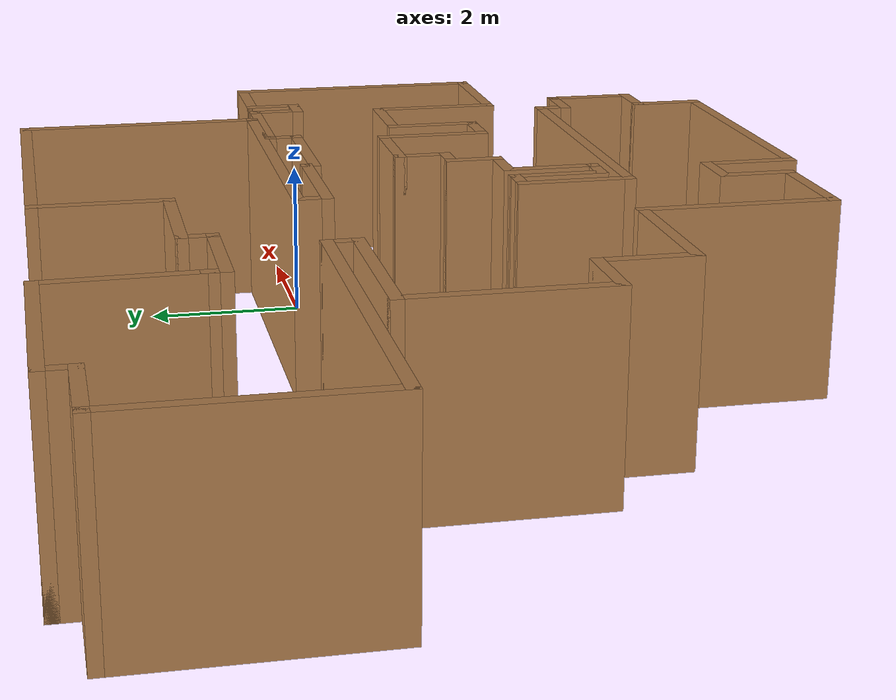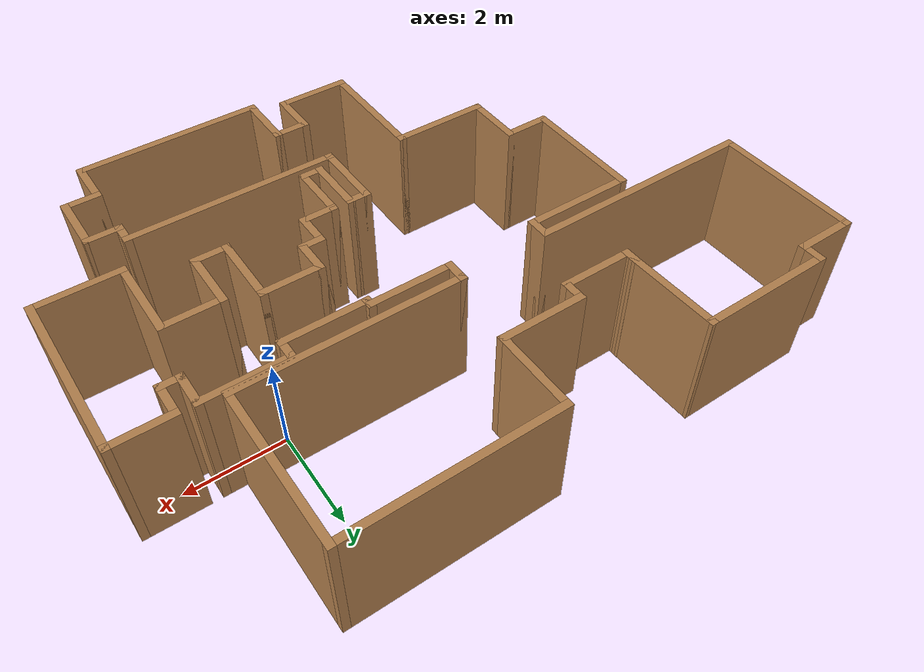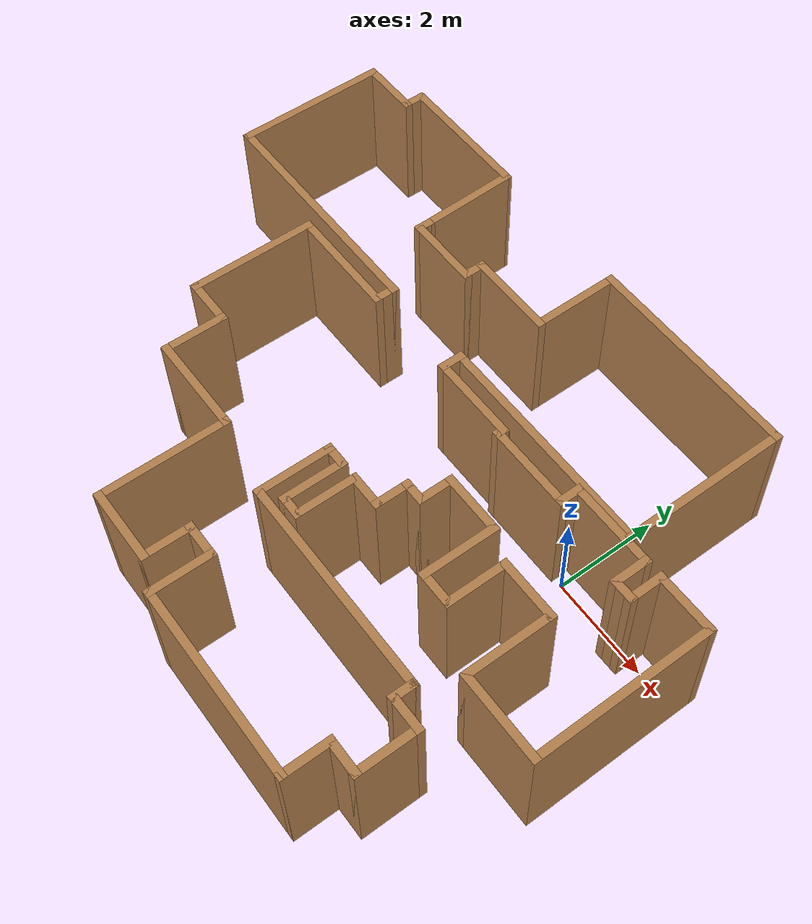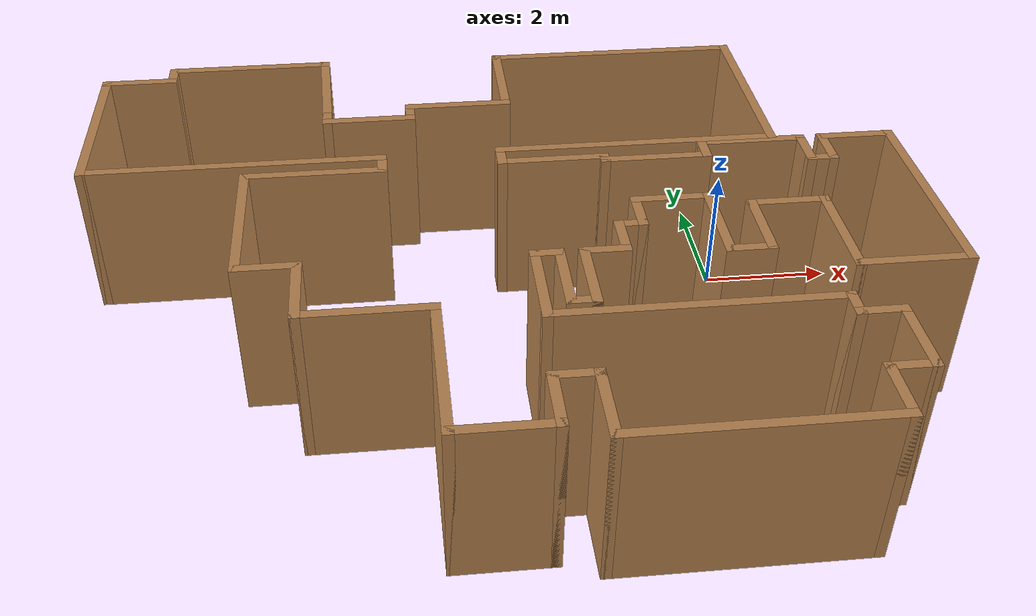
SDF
<?xml version='1.0'?>
<sdf version='1.6'>
  <model name='map_61'>
    <pose frame=''>-3.54305 -1.19375 0 0 -0 0</pose>
    <link name='Wall_0'>
      <collision name='Wall_0_Collision'>
        <geometry>
          <box>
            <size>2.75 0.15 2.5</size>
          </box>
        </geometry>
        <pose frame=''>0 0 1.25 0 -0 0</pose>
      </collision>
      <visual name='Wall_0_Visual'>
        <pose frame=''>0 0 1.25 0 -0 0</pose>
        <geometry>
          <box>
            <size>2.75 0.15 2.5</size>
          </box>
        </geometry>
        <material>
          <script>
            <uri>file://media/materials/scripts/gazebo.material</uri>
            <name>Gazebo/Wood</name>
          </script>
          <ambient>1 1 1 1</ambient>
        </material>
        <meta>
          <layer>0</layer>
        </meta>
      </visual>
      <pose frame=''>-3.95 4.79897 0 0 -0 3.14159</pose>
    </link>
    <link name='Wall_1'>
      <collision name='Wall_1_Collision'>
        <geometry>
          <box>
            <size>0.5 0.15 2.5</size>
          </box>
        </geometry>
        <pose frame=''>0 0 1.25 0 -0 0</pose>
      </collision>
      <visual name='Wall_1_Visual'>
        <pose frame=''>0 0 1.25 0 -0 0</pose>
        <geometry>
          <box>
            <size>0.5 0.15 2.5</size>
          </box>
        </geometry>
        <material>
          <script>
            <uri>file://media/materials/scripts/gazebo.material</uri>
            <name>Gazebo/Wood</name>
          </script>
          <ambient>1 1 1 1</ambient>
        </material>
        <meta>
          <layer>0</layer>
        </meta>
      </visual>
      <pose frame=''>-5.25 4.62397 0 0 -0 -1.5708</pose>
    </link>
    <link name='Wall_10'>
      <collision name='Wall_10_Collision'>
        <geometry>
          <box>
            <size>2 0.15 2.5</size>
          </box>
        </geometry>
        <pose frame=''>0 0 1.25 0 -0 0</pose>
      </collision>
      <visual name='Wall_10_Visual'>
        <pose frame=''>0 0 1.25 0 -0 0</pose>
        <geometry>
          <box>
            <size>2 0.15 2.5</size>
          </box>
        </geometry>
        <material>
          <script>
            <uri>file://media/materials/scripts/gazebo.material</uri>
            <name>Gazebo/Wood</name>
          </script>
          <ambient>1 1 1 1</ambient>
        </material>
        <meta>
          <layer>0</layer>
        </meta>
      </visual>
      <pose frame=''>-2.075 -2.20103 0 0 -0 0</pose>
    </link>
    <link name='Wall_11'>
      <collision name='Wall_11_Collision'>
        <geometry>
          <box>
            <size>2.5 0.15 2.5</size>
          </box>
        </geometry>
        <pose frame=''>0 0 1.25 0 -0 0</pose>
      </collision>
      <visual name='Wall_11_Visual'>
        <pose frame=''>0 0 1.25 0 -0 0</pose>
        <geometry>
          <box>
            <size>2.5 0.15 2.5</size>
          </box>
        </geometry>
        <material>
          <script>
            <uri>file://media/materials/scripts/gazebo.material</uri>
            <name>Gazebo/Wood</name>
          </script>
          <ambient>1 1 1 1</ambient>
        </material>
        <meta>
          <layer>0</layer>
        </meta>
      </visual>
      <pose frame=''>-1.15 -3.37603 0 0 -0 -1.5708</pose>
    </link>
    <link name='Wall_12'>
      <collision name='Wall_12_Collision'>
        <geometry>
          <box>
            <size>1.5 0.15 2.5</size>
          </box>
        </geometry>
        <pose frame=''>0 0 1.25 0 -0 0</pose>
      </collision>
      <visual name='Wall_12_Visual'>
        <pose frame=''>0 0 1.25 0 -0 0</pose>
        <geometry>
          <box>
            <size>1.5 0.15 2.5</size>
          </box>
        </geometry>
        <material>
          <script>
            <uri>file://media/materials/scripts/gazebo.material</uri>
            <name>Gazebo/Wood</name>
          </script>
          <ambient>1 1 1 1</ambient>
        </material>
        <meta>
          <layer>0</layer>
        </meta>
      </visual>
      <pose frame=''>-0.475 -4.55103 0 0 -0 0</pose>
    </link>
    <link name='Wall_13'>
      <collision name='Wall_13_Collision'>
        <geometry>
          <box>
            <size>1 0.15 2.5</size>
          </box>
        </geometry>
        <pose frame=''>0 0 1.25 0 -0 0</pose>
      </collision>
      <visual name='Wall_13_Visual'>
        <pose frame=''>0 0 1.25 0 -0 0</pose>
        <geometry>
          <box>
            <size>1 0.15 2.5</size>
          </box>
        </geometry>
        <material>
          <script>
            <uri>file://media/materials/scripts/gazebo.material</uri>
            <name>Gazebo/Wood</name>
          </script>
          <ambient>1 1 1 1</ambient>
        </material>
        <meta>
          <layer>0</layer>
        </meta>
      </visual>
      <pose frame=''>0.2 -4.12603 0 0 -0 1.5708</pose>
    </link>
    <link name='Wall_14'>
      <collision name='Wall_14_Collision'>
        <geometry>
          <box>
            <size>0.75 0.15 2.5</size>
          </box>
        </geometry>
        <pose frame=''>0 0 1.25 0 -0 0</pose>
      </collision>
      <visual name='Wall_14_Visual'>
        <pose frame=''>0 0 1.25 0 -0 0</pose>
        <geometry>
          <box>
            <size>0.75 0.15 2.5</size>
          </box>
        </geometry>
        <material>
          <script>
            <uri>file://media/materials/scripts/gazebo.material</uri>
            <name>Gazebo/Wood</name>
          </script>
          <ambient>1 1 1 1</ambient>
        </material>
        <meta>
          <layer>0</layer>
        </meta>
      </visual>
      <pose frame=''>0.5 -3.70103 0 0 -0 0</pose>
    </link>
    <link name='Wall_15'>
      <collision name='Wall_15_Collision'>
        <geometry>
          <box>
            <size>1.25 0.15 2.5</size>
          </box>
        </geometry>
        <pose frame=''>0 0 1.25 0 -0 0</pose>
      </collision>
      <visual name='Wall_15_Visual'>
        <pose frame=''>0 0 1.25 0 -0 0</pose>
        <geometry>
          <box>
            <size>1.25 0.15 2.5</size>
          </box>
        </geometry>
        <material>
          <script>
            <uri>file://media/materials/scripts/gazebo.material</uri>
            <name>Gazebo/Wood</name>
          </script>
          <ambient>1 1 1 1</ambient>
        </material>
        <meta>
          <layer>0</layer>
        </meta>
      </visual>
      <pose frame=''>0.8 -4.25103 0 0 -0 -1.5708</pose>
    </link>
    <link name='Wall_16'>
      <collision name='Wall_16_Collision'>
        <geometry>
          <box>
            <size>3.75 0.15 2.5</size>
          </box>
        </geometry>
        <pose frame=''>0 0 1.25 0 -0 0</pose>
      </collision>
      <visual name='Wall_16_Visual'>
        <pose frame=''>0 0 1.25 0 -0 0</pose>
        <geometry>
          <box>
            <size>3.75 0.15 2.5</size>
          </box>
        </geometry>
        <material>
          <script>
            <uri>file://media/materials/scripts/gazebo.material</uri>
            <name>Gazebo/Wood</name>
          </script>
          <ambient>1 1 1 1</ambient>
        </material>
        <meta>
          <layer>0</layer>
        </meta>
      </visual>
      <pose frame=''>2.6 -4.80103 0 0 -0 0</pose>
    </link>
    <link name='Wall_17'>
      <collision name='Wall_17_Collision'>
        <geometry>
          <box>
            <size>1 0.15 2.5</size>
          </box>
        </geometry>
        <pose frame=''>0 0 1.25 0 -0 0</pose>
      </collision>
      <visual name='Wall_17_Visual'>
        <pose frame=''>0 0 1.25 0 -0 0</pose>
        <geometry>
          <box>
            <size>1 0.15 2.5</size>
          </box>
        </geometry>
        <material>
          <script>
            <uri>file://media/materials/scripts/gazebo.material</uri>
            <name>Gazebo/Wood</name>
          </script>
          <ambient>1 1 1 1</ambient>
        </material>
        <meta>
          <layer>0</layer>
        </meta>
      </visual>
      <pose frame=''>4.4 -4.37603 0 0 -0 1.5708</pose>
    </link>
    <link name='Wall_18'>
      <collision name='Wall_18_Collision'>
        <geometry>
          <box>
            <size>0.75 0.15 2.5</size>
          </box>
        </geometry>
        <pose frame=''>0 0 1.25 0 -0 0</pose>
      </collision>
      <visual name='Wall_18_Visual'>
        <pose frame=''>0 0 1.25 0 -0 0</pose>
        <geometry>
          <box>
            <size>0.75 0.15 2.5</size>
          </box>
        </geometry>
        <material>
          <script>
            <uri>file://media/materials/scripts/gazebo.material</uri>
            <name>Gazebo/Wood</name>
          </script>
          <ambient>1 1 1 1</ambient>
        </material>
        <meta>
          <layer>0</layer>
        </meta>
      </visual>
      <pose frame=''>4.7 -3.95103 0 0 -0 0</pose>
    </link>
    <link name='Wall_19'>
      <collision name='Wall_19_Collision'>
        <geometry>
          <box>
            <size>1.25 0.15 2.5</size>
          </box>
        </geometry>
        <pose frame=''>0 0 1.25 0 -0 0</pose>
      </collision>
      <visual name='Wall_19_Visual'>
        <pose frame=''>0 0 1.25 0 -0 0</pose>
        <geometry>
          <box>
            <size>1.25 0.15 2.5</size>
          </box>
        </geometry>
        <material>
          <script>
            <uri>file://media/materials/scripts/gazebo.material</uri>
            <name>Gazebo/Wood</name>
          </script>
          <ambient>1 1 1 1</ambient>
        </material>
        <meta>
          <layer>0</layer>
        </meta>
      </visual>
      <pose frame=''>5 -3.40103 0 0 -0 1.5708</pose>
    </link>
    <link name='Wall_2'>
      <collision name='Wall_2_Collision'>
        <geometry>
          <box>
            <size>1.25 0.15 2.5</size>
          </box>
        </geometry>
        <pose frame=''>0 0 1.25 0 -0 0</pose>
      </collision>
      <visual name='Wall_2_Visual'>
        <pose frame=''>0 0 1.25 0 -0 0</pose>
        <geometry>
          <box>
            <size>1.25 0.15 2.5</size>
          </box>
        </geometry>
        <material>
          <script>
            <uri>file://media/materials/scripts/gazebo.material</uri>
            <name>Gazebo/Wood</name>
          </script>
          <ambient>1 1 1 1</ambient>
        </material>
        <meta>
          <layer>0</layer>
        </meta>
      </visual>
      <pose frame=''>-5.8 4.44897 0 0 -0 3.14159</pose>
    </link>
    <link name='Wall_22'>
      <collision name='Wall_22_Collision'>
        <geometry>
          <box>
            <size>0.75 0.15 2.5</size>
          </box>
        </geometry>
        <pose frame=''>0 0 1.25 0 -0 0</pose>
      </collision>
      <visual name='Wall_22_Visual'>
        <pose frame=''>0 0 1.25 0 -0 0</pose>
        <geometry>
          <box>
            <size>0.75 0.15 2.5</size>
          </box>
        </geometry>
        <material>
          <script>
            <uri>file://media/materials/scripts/gazebo.material</uri>
            <name>Gazebo/Wood</name>
          </script>
          <ambient>1 1 1 1</ambient>
        </material>
        <meta>
          <layer>0</layer>
        </meta>
      </visual>
      <pose frame=''>4.7 -2.85103 0 0 -0 3.14159</pose>
    </link>
    <link name='Wall_23'>
      <collision name='Wall_23_Collision'>
        <geometry>
          <box>
            <size>0.5 0.15 2.5</size>
          </box>
        </geometry>
        <pose frame=''>0 0 1.25 0 -0 0</pose>
      </collision>
      <visual name='Wall_23_Visual'>
        <pose frame=''>0 0 1.25 0 -0 0</pose>
        <geometry>
          <box>
            <size>0.5 0.15 2.5</size>
          </box>
        </geometry>
        <material>
          <script>
            <uri>file://media/materials/scripts/gazebo.material</uri>
            <name>Gazebo/Wood</name>
          </script>
          <ambient>1 1 1 1</ambient>
        </material>
        <meta>
          <layer>0</layer>
        </meta>
      </visual>
      <pose frame=''>4.4 -2.67603 0 0 -0 1.5708</pose>
    </link>
    <link name='Wall_24'>
      <collision name='Wall_24_Collision'>
        <geometry>
          <box>
            <size>4.25 0.15 2.5</size>
          </box>
        </geometry>
        <pose frame=''>0 0 1.25 0 -0 0</pose>
      </collision>
      <visual name='Wall_24_Visual'>
        <pose frame=''>0 0 1.25 0 -0 0</pose>
        <geometry>
          <box>
            <size>4.25 0.15 2.5</size>
          </box>
        </geometry>
        <material>
          <script>
            <uri>file://media/materials/scripts/gazebo.material</uri>
            <name>Gazebo/Wood</name>
          </script>
          <ambient>1 1 1 1</ambient>
        </material>
        <meta>
          <layer>0</layer>
        </meta>
      </visual>
      <pose frame=''>2.35 -2.50103 0 0 -0 3.14159</pose>
    </link>
    <link name='Wall_25'>
      <collision name='Wall_25_Collision'>
        <geometry>
          <box>
            <size>1.5 0.15 2.5</size>
          </box>
        </geometry>
        <pose frame=''>0 0 1.25 0 -0 0</pose>
      </collision>
      <visual name='Wall_25_Visual'>
        <pose frame=''>0 0 1.25 0 -0 0</pose>
        <geometry>
          <box>
            <size>1.5 0.15 2.5</size>
          </box>
        </geometry>
        <material>
          <script>
            <uri>file://media/materials/scripts/gazebo.material</uri>
            <name>Gazebo/Wood</name>
          </script>
          <ambient>1 1 1 1</ambient>
        </material>
        <meta>
          <layer>0</layer>
        </meta>
      </visual>
      <pose frame=''>0.3 -1.82603 0 0 -0 1.5708</pose>
    </link>
    <link name='Wall_26'>
      <collision name='Wall_26_Collision'>
        <geometry>
          <box>
            <size>0.5 0.15 2.5</size>
          </box>
        </geometry>
        <pose frame=''>0 0 1.25 0 -0 0</pose>
      </collision>
      <visual name='Wall_26_Visual'>
        <pose frame=''>0 0 1.25 0 -0 0</pose>
        <geometry>
          <box>
            <size>0.5 0.15 2.5</size>
          </box>
        </geometry>
        <material>
          <script>
            <uri>file://media/materials/scripts/gazebo.material</uri>
            <name>Gazebo/Wood</name>
          </script>
          <ambient>1 1 1 1</ambient>
        </material>
        <meta>
          <layer>0</layer>
        </meta>
      </visual>
      <pose frame=''>0.475 -1.15103 0 0 -0 0</pose>
    </link>
    <link name='Wall_27'>
      <collision name='Wall_27_Collision'>
        <geometry>
          <box>
            <size>1.25 0.15 2.5</size>
          </box>
        </geometry>
        <pose frame=''>0 0 1.25 0 -0 0</pose>
      </collision>
      <visual name='Wall_27_Visual'>
        <pose frame=''>0 0 1.25 0 -0 0</pose>
        <geometry>
          <box>
            <size>1.25 0.15 2.5</size>
          </box>
        </geometry>
        <material>
          <script>
            <uri>file://media/materials/scripts/gazebo.material</uri>
            <name>Gazebo/Wood</name>
          </script>
          <ambient>1 1 1 1</ambient>
        </material>
        <meta>
          <layer>0</layer>
        </meta>
      </visual>
      <pose frame=''>0.65 -1.70103 0 0 -0 -1.5708</pose>
    </link>
    <link name='Wall_28'>
      <collision name='Wall_28_Collision'>
        <geometry>
          <box>
            <size>0.5 0.15 2.5</size>
          </box>
        </geometry>
        <pose frame=''>0 0 1.25 0 -0 0</pose>
      </collision>
      <visual name='Wall_28_Visual'>
        <pose frame=''>0 0 1.25 0 -0 0</pose>
        <geometry>
          <box>
            <size>0.5 0.15 2.5</size>
          </box>
        </geometry>
        <material>
          <script>
            <uri>file://media/materials/scripts/gazebo.material</uri>
            <name>Gazebo/Wood</name>
          </script>
          <ambient>1 1 1 1</ambient>
        </material>
        <meta>
          <layer>0</layer>
        </meta>
      </visual>
      <pose frame=''>0.825 -2.25103 0 0 -0 0</pose>
    </link>
    <link name='Wall_29'>
      <collision name='Wall_29_Collision'>
        <geometry>
          <box>
            <size>1.25 0.15 2.5</size>
          </box>
        </geometry>
        <pose frame=''>0 0 1.25 0 -0 0</pose>
      </collision>
      <visual name='Wall_29_Visual'>
        <pose frame=''>0 0 1.25 0 -0 0</pose>
        <geometry>
          <box>
            <size>1.25 0.15 2.5</size>
          </box>
        </geometry>
        <material>
          <script>
            <uri>file://media/materials/scripts/gazebo.material</uri>
            <name>Gazebo/Wood</name>
          </script>
          <ambient>1 1 1 1</ambient>
        </material>
        <meta>
          <layer>0</layer>
        </meta>
      </visual>
      <pose frame=''>1 -1.70103 0 0 -0 1.5708</pose>
    </link>
    <link name='Wall_3'>
      <collision name='Wall_3_Collision'>
        <geometry>
          <box>
            <size>3 0.15 2.5</size>
          </box>
        </geometry>
        <pose frame=''>0 0 1.25 0 -0 0</pose>
      </collision>
      <visual name='Wall_3_Visual'>
        <pose frame=''>0 0 1.25 0 -0 0</pose>
        <geometry>
          <box>
            <size>3 0.15 2.5</size>
          </box>
        </geometry>
        <material>
          <script>
            <uri>file://media/materials/scripts/gazebo.material</uri>
            <name>Gazebo/Wood</name>
          </script>
          <ambient>1 1 1 1</ambient>
        </material>
        <meta>
          <layer>0</layer>
        </meta>
      </visual>
      <pose frame=''>-6.35 3.02397 0 0 -0 -1.5708</pose>
    </link>
    <link name='Wall_30'>
      <collision name='Wall_30_Collision'>
        <geometry>
          <box>
            <size>0.75 0.15 2.5</size>
          </box>
        </geometry>
        <pose frame=''>0 0 1.25 0 -0 0</pose>
      </collision>
      <visual name='Wall_30_Visual'>
        <pose frame=''>0 0 1.25 0 -0 0</pose>
        <geometry>
          <box>
            <size>0.75 0.15 2.5</size>
          </box>
        </geometry>
        <material>
          <script>
            <uri>file://media/materials/scripts/gazebo.material</uri>
            <name>Gazebo/Wood</name>
          </script>
          <ambient>1 1 1 1</ambient>
        </material>
        <meta>
          <layer>0</layer>
        </meta>
      </visual>
      <pose frame=''>1.3 -1.15103 0 0 -0 0</pose>
    </link>
    <link name='Wall_31'>
      <collision name='Wall_31_Collision'>
        <geometry>
          <box>
            <size>0.75 0.15 2.5</size>
          </box>
        </geometry>
        <pose frame=''>0 0 1.25 0 -0 0</pose>
      </collision>
      <visual name='Wall_31_Visual'>
        <pose frame=''>0 0 1.25 0 -0 0</pose>
        <geometry>
          <box>
            <size>0.75 0.15 2.5</size>
          </box>
        </geometry>
        <material>
          <script>
            <uri>file://media/materials/scripts/gazebo.material</uri>
            <name>Gazebo/Wood</name>
          </script>
          <ambient>1 1 1 1</ambient>
        </material>
        <meta>
          <layer>0</layer>
        </meta>
      </visual>
      <pose frame=''>1.6 -0.851027 0 0 -0 1.5708</pose>
    </link>
    <link name='Wall_32'>
      <collision name='Wall_32_Collision'>
        <geometry>
          <box>
            <size>0.5 0.15 2.5</size>
          </box>
        </geometry>
        <pose frame=''>0 0 1.25 0 -0 0</pose>
      </collision>
      <visual name='Wall_32_Visual'>
        <pose frame=''>0 0 1.25 0 -0 0</pose>
        <geometry>
          <box>
            <size>0.5 0.15 2.5</size>
          </box>
        </geometry>
        <material>
          <script>
            <uri>file://media/materials/scripts/gazebo.material</uri>
            <name>Gazebo/Wood</name>
          </script>
          <ambient>1 1 1 1</ambient>
        </material>
        <meta>
          <layer>0</layer>
        </meta>
      </visual>
      <pose frame=''>1.775 -0.551027 0 0 -0 0</pose>
    </link>
    <link name='Wall_33'>
      <collision name='Wall_33_Collision'>
        <geometry>
          <box>
            <size>0.75 0.15 2.5</size>
          </box>
        </geometry>
        <pose frame=''>0 0 1.25 0 -0 0</pose>
      </collision>
      <visual name='Wall_33_Visual'>
        <pose frame=''>0 0 1.25 0 -0 0</pose>
        <geometry>
          <box>
            <size>0.75 0.15 2.5</size>
          </box>
        </geometry>
        <material>
          <script>
            <uri>file://media/materials/scripts/gazebo.material</uri>
            <name>Gazebo/Wood</name>
          </script>
          <ambient>1 1 1 1</ambient>
        </material>
        <meta>
          <layer>0</layer>
        </meta>
      </visual>
      <pose frame=''>1.95 -0.251027 0 0 -0 1.5708</pose>
    </link>
    <link name='Wall_34'>
      <collision name='Wall_34_Collision'>
        <geometry>
          <box>
            <size>1.25 0.15 2.5</size>
          </box>
        </geometry>
        <pose frame=''>0 0 1.25 0 -0 0</pose>
      </collision>
      <visual name='Wall_34_Visual'>
        <pose frame=''>0 0 1.25 0 -0 0</pose>
        <geometry>
          <box>
            <size>1.25 0.15 2.5</size>
          </box>
        </geometry>
        <material>
          <script>
            <uri>file://media/materials/scripts/gazebo.material</uri>
            <name>Gazebo/Wood</name>
          </script>
          <ambient>1 1 1 1</ambient>
        </material>
        <meta>
          <layer>0</layer>
        </meta>
      </visual>
      <pose frame=''>2.5 0.048973 0 0 -0 0</pose>
    </link>
    <link name='Wall_35'>
      <collision name='Wall_35_Collision'>
        <geometry>
          <box>
            <size>1.5 0.15 2.5</size>
          </box>
        </geometry>
        <pose frame=''>0 0 1.25 0 -0 0</pose>
      </collision>
      <visual name='Wall_35_Visual'>
        <pose frame=''>0 0 1.25 0 -0 0</pose>
        <geometry>
          <box>
            <size>1.5 0.15 2.5</size>
          </box>
        </geometry>
        <material>
          <script>
            <uri>file://media/materials/scripts/gazebo.material</uri>
            <name>Gazebo/Wood</name>
          </script>
          <ambient>1 1 1 1</ambient>
        </material>
        <meta>
          <layer>0</layer>
        </meta>
      </visual>
      <pose frame=''>3.05 -0.626027 0 0 -0 -1.5708</pose>
    </link>
    <link name='Wall_36'>
      <collision name='Wall_36_Collision'>
        <geometry>
          <box>
            <size>0.75 0.15 2.5</size>
          </box>
        </geometry>
        <pose frame=''>0 0 1.25 0 -0 0</pose>
      </collision>
      <visual name='Wall_36_Visual'>
        <pose frame=''>0 0 1.25 0 -0 0</pose>
        <geometry>
          <box>
            <size>0.75 0.15 2.5</size>
          </box>
        </geometry>
        <material>
          <script>
            <uri>file://media/materials/scripts/gazebo.material</uri>
            <name>Gazebo/Wood</name>
          </script>
          <ambient>1 1 1 1</ambient>
        </material>
        <meta>
          <layer>0</layer>
        </meta>
      </visual>
      <pose frame=''>3.35 -1.30103 0 0 -0 0</pose>
    </link>
    <link name='Wall_37'>
      <collision name='Wall_37_Collision'>
        <geometry>
          <box>
            <size>1.25 0.15 2.5</size>
          </box>
        </geometry>
        <pose frame=''>0 0 1.25 0 -0 0</pose>
      </collision>
      <visual name='Wall_37_Visual'>
        <pose frame=''>0 0 1.25 0 -0 0</pose>
        <geometry>
          <box>
            <size>1.25 0.15 2.5</size>
          </box>
        </geometry>
        <material>
          <script>
            <uri>file://media/materials/scripts/gazebo.material</uri>
            <name>Gazebo/Wood</name>
          </script>
          <ambient>1 1 1 1</ambient>
        </material>
        <meta>
          <layer>0</layer>
        </meta>
      </visual>
      <pose frame=''>3.65 -0.751027 0 0 -0 1.5708</pose>
    </link>
    <link name='Wall_38'>
      <collision name='Wall_38_Collision'>
        <geometry>
          <box>
            <size>1.25 0.15 2.5</size>
          </box>
        </geometry>
        <pose frame=''>0 0 1.25 0 -0 0</pose>
      </collision>
      <visual name='Wall_38_Visual'>
        <pose frame=''>0 0 1.25 0 -0 0</pose>
        <geometry>
          <box>
            <size>1.25 0.15 2.5</size>
          </box>
        </geometry>
        <material>
          <script>
            <uri>file://media/materials/scripts/gazebo.material</uri>
            <name>Gazebo/Wood</name>
          </script>
          <ambient>1 1 1 1</ambient>
        </material>
        <meta>
          <layer>0</layer>
        </meta>
      </visual>
      <pose frame=''>4.2 -0.201027 0 0 -0 0</pose>
    </link>
    <link name='Wall_39'>
      <collision name='Wall_39_Collision'>
        <geometry>
          <box>
            <size>1.75 0.15 2.5</size>
          </box>
        </geometry>
        <pose frame=''>0 0 1.25 0 -0 0</pose>
      </collision>
      <visual name='Wall_39_Visual'>
        <pose frame=''>0 0 1.25 0 -0 0</pose>
        <geometry>
          <box>
            <size>1.75 0.15 2.5</size>
          </box>
        </geometry>
        <material>
          <script>
            <uri>file://media/materials/scripts/gazebo.material</uri>
            <name>Gazebo/Wood</name>
          </script>
          <ambient>1 1 1 1</ambient>
        </material>
        <meta>
          <layer>0</layer>
        </meta>
      </visual>
      <pose frame=''>4.75 -1.00103 0 0 -0 -1.5708</pose>
    </link>
    <link name='Wall_4'>
      <collision name='Wall_4_Collision'>
        <geometry>
          <box>
            <size>4.75 0.15 2.5</size>
          </box>
        </geometry>
        <pose frame=''>0 0 1.25 0 -0 0</pose>
      </collision>
      <visual name='Wall_4_Visual'>
        <pose frame=''>0 0 1.25 0 -0 0</pose>
        <geometry>
          <box>
            <size>4.75 0.15 2.5</size>
          </box>
        </geometry>
        <material>
          <script>
            <uri>file://media/materials/scripts/gazebo.material</uri>
            <name>Gazebo/Wood</name>
          </script>
          <ambient>1 1 1 1</ambient>
        </material>
        <meta>
          <layer>0</layer>
        </meta>
      </visual>
      <pose frame=''>-4.05 1.59897 0 0 -0 0</pose>
    </link>
    <link name='Wall_40'>
      <collision name='Wall_40_Collision'>
        <geometry>
          <box>
            <size>1.75 0.15 2.5</size>
          </box>
        </geometry>
        <pose frame=''>0 0 1.25 0 -0 0</pose>
      </collision>
      <visual name='Wall_40_Visual'>
        <pose frame=''>0 0 1.25 0 -0 0</pose>
        <geometry>
          <box>
            <size>1.75 0.15 2.5</size>
          </box>
        </geometry>
        <material>
          <script>
            <uri>file://media/materials/scripts/gazebo.material</uri>
            <name>Gazebo/Wood</name>
          </script>
          <ambient>1 1 1 1</ambient>
        </material>
        <meta>
          <layer>0</layer>
        </meta>
      </visual>
      <pose frame=''>5.55 -1.80103 0 0 -0 0</pose>
    </link>
    <link name='Wall_41'>
      <collision name='Wall_41_Collision'>
        <geometry>
          <box>
            <size>3.5 0.15 2.5</size>
          </box>
        </geometry>
        <pose frame=''>0 0 1.25 0 -0 0</pose>
      </collision>
      <visual name='Wall_41_Visual'>
        <pose frame=''>0 0 1.25 0 -0 0</pose>
        <geometry>
          <box>
            <size>3.5 0.15 2.5</size>
          </box>
        </geometry>
        <material>
          <script>
            <uri>file://media/materials/scripts/gazebo.material</uri>
            <name>Gazebo/Wood</name>
          </script>
          <ambient>1 1 1 1</ambient>
        </material>
        <meta>
          <layer>0</layer>
        </meta>
      </visual>
      <pose frame=''>6.35 -0.126027 0 0 -0 1.5708</pose>
    </link>
    <link name='Wall_42'>
      <collision name='Wall_42_Collision'>
        <geometry>
          <box>
            <size>1.25 0.15 2.5</size>
          </box>
        </geometry>
        <pose frame=''>0 0 1.25 0 -0 0</pose>
      </collision>
      <visual name='Wall_42_Visual'>
        <pose frame=''>0 0 1.25 0 -0 0</pose>
        <geometry>
          <box>
            <size>1.25 0.15 2.5</size>
          </box>
        </geometry>
        <material>
          <script>
            <uri>file://media/materials/scripts/gazebo.material</uri>
            <name>Gazebo/Wood</name>
          </script>
          <ambient>1 1 1 1</ambient>
        </material>
        <meta>
          <layer>0</layer>
        </meta>
      </visual>
      <pose frame=''>5.8 1.54897 0 0 -0 3.14159</pose>
    </link>
    <link name='Wall_43'>
      <collision name='Wall_43_Collision'>
        <geometry>
          <box>
            <size>0.75 0.15 2.5</size>
          </box>
        </geometry>
        <pose frame=''>0 0 1.25 0 -0 0</pose>
      </collision>
      <visual name='Wall_43_Visual'>
        <pose frame=''>0 0 1.25 0 -0 0</pose>
        <geometry>
          <box>
            <size>0.75 0.15 2.5</size>
          </box>
        </geometry>
        <material>
          <script>
            <uri>file://media/materials/scripts/gazebo.material</uri>
            <name>Gazebo/Wood</name>
          </script>
          <ambient>1 1 1 1</ambient>
        </material>
        <meta>
          <layer>0</layer>
        </meta>
      </visual>
      <pose frame=''>5.25 1.24897 0 0 -0 -1.5708</pose>
    </link>
    <link name='Wall_44'>
      <collision name='Wall_44_Collision'>
        <geometry>
          <box>
            <size>0.5 0.15 2.5</size>
          </box>
        </geometry>
        <pose frame=''>0 0 1.25 0 -0 0</pose>
      </collision>
      <visual name='Wall_44_Visual'>
        <pose frame=''>0 0 1.25 0 -0 0</pose>
        <geometry>
          <box>
            <size>0.5 0.15 2.5</size>
          </box>
        </geometry>
        <material>
          <script>
            <uri>file://media/materials/scripts/gazebo.material</uri>
            <name>Gazebo/Wood</name>
          </script>
          <ambient>1 1 1 1</ambient>
        </material>
        <meta>
          <layer>0</layer>
        </meta>
      </visual>
      <pose frame=''>5.075 0.948973 0 0 -0 3.14159</pose>
    </link>
    <link name='Wall_47'>
      <collision name='Wall_47_Collision'>
        <geometry>
          <box>
            <size>0.75 0.15 2.5</size>
          </box>
        </geometry>
        <pose frame=''>0 0 1.25 0 -0 0</pose>
      </collision>
      <visual name='Wall_47_Visual'>
        <pose frame=''>0 0 1.25 0 -0 0</pose>
        <geometry>
          <box>
            <size>0.75 0.15 2.5</size>
          </box>
        </geometry>
        <material>
          <script>
            <uri>file://media/materials/scripts/gazebo.material</uri>
            <name>Gazebo/Wood</name>
          </script>
          <ambient>1 1 1 1</ambient>
        </material>
        <meta>
          <layer>0</layer>
        </meta>
      </visual>
      <pose frame=''>4.9 1.24897 0 0 -0 1.5708</pose>
    </link>
    <link name='Wall_48'>
      <collision name='Wall_48_Collision'>
        <geometry>
          <box>
            <size>1.75 0.15 2.5</size>
          </box>
        </geometry>
        <pose frame=''>0 0 1.25 0 -0 0</pose>
      </collision>
      <visual name='Wall_48_Visual'>
        <pose frame=''>0 0 1.25 0 -0 0</pose>
        <geometry>
          <box>
            <size>1.75 0.15 2.5</size>
          </box>
        </geometry>
        <material>
          <script>
            <uri>file://media/materials/scripts/gazebo.material</uri>
            <name>Gazebo/Wood</name>
          </script>
          <ambient>1 1 1 1</ambient>
        </material>
        <meta>
          <layer>0</layer>
        </meta>
      </visual>
      <pose frame=''>4.1 1.54897 0 0 -0 3.14159</pose>
    </link>
    <link name='Wall_49'>
      <collision name='Wall_49_Collision'>
        <geometry>
          <box>
            <size>0.5 0.15 2.5</size>
          </box>
        </geometry>
        <pose frame=''>0 0 1.25 0 -0 0</pose>
      </collision>
      <visual name='Wall_49_Visual'>
        <pose frame=''>0 0 1.25 0 -0 0</pose>
        <geometry>
          <box>
            <size>0.5 0.15 2.5</size>
          </box>
        </geometry>
        <material>
          <script>
            <uri>file://media/materials/scripts/gazebo.material</uri>
            <name>Gazebo/Wood</name>
          </script>
          <ambient>1 1 1 1</ambient>
        </material>
        <meta>
          <layer>0</layer>
        </meta>
      </visual>
      <pose frame=''>3.3 1.37397 0 0 -0 -1.5708</pose>
    </link>
    <link name='Wall_5'>
      <collision name='Wall_5_Collision'>
        <geometry>
          <box>
            <size>0.5 0.15 2.5</size>
          </box>
        </geometry>
        <pose frame=''>0 0 1.25 0 -0 0</pose>
      </collision>
      <visual name='Wall_5_Visual'>
        <pose frame=''>0 0 1.25 0 -0 0</pose>
        <geometry>
          <box>
            <size>0.5 0.15 2.5</size>
          </box>
        </geometry>
        <material>
          <script>
            <uri>file://media/materials/scripts/gazebo.material</uri>
            <name>Gazebo/Wood</name>
          </script>
          <ambient>1 1 1 1</ambient>
        </material>
        <meta>
          <layer>0</layer>
        </meta>
      </visual>
      <pose frame=''>-1.75 1.42397 0 0 -0 -1.5708</pose>
    </link>
    <link name='Wall_50'>
      <collision name='Wall_50_Collision'>
        <geometry>
          <box>
            <size>1.75 0.15 2.5</size>
          </box>
        </geometry>
        <pose frame=''>0 0 1.25 0 -0 0</pose>
      </collision>
      <visual name='Wall_50_Visual'>
        <pose frame=''>0 0 1.25 0 -0 0</pose>
        <geometry>
          <box>
            <size>1.75 0.15 2.5</size>
          </box>
        </geometry>
        <material>
          <script>
            <uri>file://media/materials/scripts/gazebo.material</uri>
            <name>Gazebo/Wood</name>
          </script>
          <ambient>1 1 1 1</ambient>
        </material>
        <meta>
          <layer>0</layer>
        </meta>
      </visual>
      <pose frame=''>2.5 1.19897 0 0 -0 3.14159</pose>
    </link>
    <link name='Wall_51'>
      <collision name='Wall_51_Collision'>
        <geometry>
          <box>
            <size>0.25 0.15 2.5</size>
          </box>
        </geometry>
        <pose frame=''>0 0 1.25 0 -0 0</pose>
      </collision>
      <visual name='Wall_51_Visual'>
        <pose frame=''>0 0 1.25 0 -0 0</pose>
        <geometry>
          <box>
            <size>0.25 0.15 2.5</size>
          </box>
        </geometry>
        <material>
          <script>
            <uri>file://media/materials/scripts/gazebo.material</uri>
            <name>Gazebo/Wood</name>
          </script>
          <ambient>1 1 1 1</ambient>
        </material>
        <meta>
          <layer>0</layer>
        </meta>
      </visual>
      <pose frame=''>1.7 1.24897 0 0 -0 1.5708</pose>
    </link>
    <link name='Wall_52'>
      <collision name='Wall_52_Collision'>
        <geometry>
          <box>
            <size>1.75 0.15 2.5</size>
          </box>
        </geometry>
        <pose frame=''>0 0 1.25 0 -0 0</pose>
      </collision>
      <visual name='Wall_52_Visual'>
        <pose frame=''>0 0 1.25 0 -0 0</pose>
        <geometry>
          <box>
            <size>1.75 0.15 2.5</size>
          </box>
        </geometry>
        <material>
          <script>
            <uri>file://media/materials/scripts/gazebo.material</uri>
            <name>Gazebo/Wood</name>
          </script>
          <ambient>1 1 1 1</ambient>
        </material>
        <meta>
          <layer>0</layer>
        </meta>
      </visual>
      <pose frame=''>0.9 1.29897 0 0 -0 3.14159</pose>
    </link>
    <link name='Wall_53'>
      <collision name='Wall_53_Collision'>
        <geometry>
          <box>
            <size>0.5 0.15 2.5</size>
          </box>
        </geometry>
        <pose frame=''>0 0 1.25 0 -0 0</pose>
      </collision>
      <visual name='Wall_53_Visual'>
        <pose frame=''>0 0 1.25 0 -0 0</pose>
        <geometry>
          <box>
            <size>0.5 0.15 2.5</size>
          </box>
        </geometry>
        <material>
          <script>
            <uri>file://media/materials/scripts/gazebo.material</uri>
            <name>Gazebo/Wood</name>
          </script>
          <ambient>1 1 1 1</ambient>
        </material>
        <meta>
          <layer>0</layer>
        </meta>
      </visual>
      <pose frame=''>0.1 1.47397 0 0 -0 1.5708</pose>
    </link>
    <link name='Wall_54'>
      <collision name='Wall_54_Collision'>
        <geometry>
          <box>
            <size>4.5 0.15 2.5</size>
          </box>
        </geometry>
        <pose frame=''>0 0 1.25 0 -0 0</pose>
      </collision>
      <visual name='Wall_54_Visual'>
        <pose frame=''>0 0 1.25 0 -0 0</pose>
        <geometry>
          <box>
            <size>4.5 0.15 2.5</size>
          </box>
        </geometry>
        <material>
          <script>
            <uri>file://media/materials/scripts/gazebo.material</uri>
            <name>Gazebo/Wood</name>
          </script>
          <ambient>1 1 1 1</ambient>
        </material>
        <meta>
          <layer>0</layer>
        </meta>
      </visual>
      <pose frame=''>2.275 1.64897 0 0 -0 0</pose>
    </link>
    <link name='Wall_55'>
      <collision name='Wall_55_Collision'>
        <geometry>
          <box>
            <size>3.25 0.15 2.5</size>
          </box>
        </geometry>
        <pose frame=''>0 0 1.25 0 -0 0</pose>
      </collision>
      <visual name='Wall_55_Visual'>
        <pose frame=''>0 0 1.25 0 -0 0</pose>
        <geometry>
          <box>
            <size>3.25 0.15 2.5</size>
          </box>
        </geometry>
        <material>
          <script>
            <uri>file://media/materials/scripts/gazebo.material</uri>
            <name>Gazebo/Wood</name>
          </script>
          <ambient>1 1 1 1</ambient>
        </material>
        <meta>
          <layer>0</layer>
        </meta>
      </visual>
      <pose frame=''>4.45 3.19897 0 0 -0 1.5708</pose>
    </link>
    <link name='Wall_56'>
      <collision name='Wall_56_Collision'>
        <geometry>
          <box>
            <size>4.25 0.15 2.5</size>
          </box>
        </geometry>
        <pose frame=''>0 0 1.25 0 -0 0</pose>
      </collision>
      <visual name='Wall_56_Visual'>
        <pose frame=''>0 0 1.25 0 -0 0</pose>
        <geometry>
          <box>
            <size>4.25 0.15 2.5</size>
          </box>
        </geometry>
        <material>
          <script>
            <uri>file://media/materials/scripts/gazebo.material</uri>
            <name>Gazebo/Wood</name>
          </script>
          <ambient>1 1 1 1</ambient>
        </material>
        <meta>
          <layer>0</layer>
        </meta>
      </visual>
      <pose frame=''>2.4 4.74897 0 0 -0 3.14159</pose>
    </link>
    <link name='Wall_6'>
      <collision name='Wall_6_Collision'>
        <geometry>
          <box>
            <size>2.25 0.15 2.5</size>
          </box>
        </geometry>
        <pose frame=''>0 0 1.25 0 -0 0</pose>
      </collision>
      <visual name='Wall_6_Visual'>
        <pose frame=''>0 0 1.25 0 -0 0</pose>
        <geometry>
          <box>
            <size>2.25 0.15 2.5</size>
          </box>
        </geometry>
        <material>
          <script>
            <uri>file://media/materials/scripts/gazebo.material</uri>
            <name>Gazebo/Wood</name>
          </script>
          <ambient>1 1 1 1</ambient>
        </material>
        <meta>
          <layer>0</layer>
        </meta>
      </visual>
      <pose frame=''>-2.8 1.24897 0 0 -0 3.14159</pose>
    </link>
    <link name='Wall_63'>
      <collision name='Wall_63_Collision'>
        <geometry>
          <box>
            <size>1.95069 0.15 2.5</size>
          </box>
        </geometry>
        <pose frame=''>0 0 1.25 0 -0 0</pose>
      </collision>
      <visual name='Wall_63_Visual'>
        <pose frame=''>0 0 1.25 0 -0 0</pose>
        <geometry>
          <box>
            <size>1.95069 0.15 2.5</size>
          </box>
        </geometry>
        <material>
          <script>
            <uri>file://media/materials/scripts/gazebo.material</uri>
            <name>Gazebo/Wood</name>
          </script>
          <ambient>1 1 1 1</ambient>
        </material>
        <meta>
          <layer>0</layer>
        </meta>
      </visual>
      <pose frame=''>-2.625 3.89897 0 0 -0 1.59857</pose>
    </link>
    <link name='Wall_7'>
      <collision name='Wall_7_Collision'>
        <geometry>
          <box>
            <size>2.5 0.15 2.5</size>
          </box>
        </geometry>
        <pose frame=''>0 0 1.25 0 -0 0</pose>
      </collision>
      <visual name='Wall_7_Visual'>
        <pose frame=''>0 0 1.25 0 -0 0</pose>
        <geometry>
          <box>
            <size>2.5 0.15 2.5</size>
          </box>
        </geometry>
        <material>
          <script>
            <uri>file://media/materials/scripts/gazebo.material</uri>
            <name>Gazebo/Wood</name>
          </script>
          <ambient>1 1 1 1</ambient>
        </material>
        <meta>
          <layer>0</layer>
        </meta>
      </visual>
      <pose frame=''>-3.85 0.073973 0 0 -0 -1.5708</pose>
    </link>
    <link name='Wall_79'>
      <collision name='Wall_79_Collision'>
        <geometry>
          <box>
            <size>1.75 0.15 2.5</size>
          </box>
        </geometry>
        <pose frame=''>0 0 1.25 0 -0 0</pose>
      </collision>
      <visual name='Wall_79_Visual'>
        <pose frame=''>0 0 1.25 0 -0 0</pose>
        <geometry>
          <box>
            <size>1.75 0.15 2.5</size>
          </box>
        </geometry>
        <material>
          <script>
            <uri>file://media/materials/scripts/gazebo.material</uri>
            <name>Gazebo/Wood</name>
          </script>
          <ambient>1 1 1 1</ambient>
        </material>
        <meta>
          <layer>0</layer>
        </meta>
      </visual>
      <pose frame=''>0.35 3.94897 0 0 -0 -1.5708</pose>
    </link>
    <link name='Wall_8'>
      <collision name='Wall_8_Collision'>
        <geometry>
          <box>
            <size>1 0.15 2.5</size>
          </box>
        </geometry>
        <pose frame=''>0 0 1.25 0 -0 0</pose>
      </collision>
      <visual name='Wall_8_Visual'>
        <pose frame=''>0 0 1.25 0 -0 0</pose>
        <geometry>
          <box>
            <size>1 0.15 2.5</size>
          </box>
        </geometry>
        <material>
          <script>
            <uri>file://media/materials/scripts/gazebo.material</uri>
            <name>Gazebo/Wood</name>
          </script>
          <ambient>1 1 1 1</ambient>
        </material>
        <meta>
          <layer>0</layer>
        </meta>
      </visual>
      <pose frame=''>-3.425 -1.10103 0 0 -0 0</pose>
    </link>
    <link name='Wall_80'>
      <collision name='Wall_80_Collision'>
        <geometry>
          <box>
            <size>1.75 0.15 2.5</size>
          </box>
        </geometry>
        <pose frame=''>0 0 1.25 0 -0 0</pose>
      </collision>
      <visual name='Wall_80_Visual'>
        <pose frame=''>0 0 1.25 0 -0 0</pose>
        <geometry>
          <box>
            <size>1.75 0.15 2.5</size>
          </box>
        </geometry>
        <material>
          <script>
            <uri>file://media/materials/scripts/gazebo.material</uri>
            <name>Gazebo/Wood</name>
          </script>
          <ambient>1 1 1 1</ambient>
        </material>
        <meta>
          <layer>0</layer>
        </meta>
      </visual>
      <pose frame=''>-0.45 3.14897 0 0 -0 3.14159</pose>
    </link>
    <link name='Wall_81'>
      <collision name='Wall_81_Collision'>
        <geometry>
          <box>
            <size>0.5 0.15 2.5</size>
          </box>
        </geometry>
        <pose frame=''>0 0 1.25 0 -0 0</pose>
      </collision>
      <visual name='Wall_81_Visual'>
        <pose frame=''>0 0 1.25 0 -0 0</pose>
        <geometry>
          <box>
            <size>0.5 0.15 2.5</size>
          </box>
        </geometry>
        <material>
          <script>
            <uri>file://media/materials/scripts/gazebo.material</uri>
            <name>Gazebo/Wood</name>
          </script>
          <ambient>1 1 1 1</ambient>
        </material>
        <meta>
          <layer>0</layer>
        </meta>
      </visual>
      <pose frame=''>-1.25 2.97397 0 0 -0 -1.5708</pose>
    </link>
    <link name='Wall_82'>
      <collision name='Wall_82_Collision'>
        <geometry>
          <box>
            <size>1.5 0.15 2.5</size>
          </box>
        </geometry>
        <pose frame=''>0 0 1.25 0 -0 0</pose>
      </collision>
      <visual name='Wall_82_Visual'>
        <pose frame=''>0 0 1.25 0 -0 0</pose>
        <geometry>
          <box>
            <size>1.5 0.15 2.5</size>
          </box>
        </geometry>
        <material>
          <script>
            <uri>file://media/materials/scripts/gazebo.material</uri>
            <name>Gazebo/Wood</name>
          </script>
          <ambient>1 1 1 1</ambient>
        </material>
        <meta>
          <layer>0</layer>
        </meta>
      </visual>
      <pose frame=''>-1.925 2.79897 0 0 -0 3.14159</pose>
    </link>
    <link name='Wall_83'>
      <collision name='Wall_83_Collision'>
        <geometry>
          <box>
            <size>0.35 0.15 2.5</size>
          </box>
        </geometry>
        <pose frame=''>0 0 1.25 0 -0 0</pose>
      </collision>
      <visual name='Wall_83_Visual'>
        <pose frame=''>0 0 1.25 0 -0 0</pose>
        <geometry>
          <box>
            <size>0.35 0.15 2.5</size>
          </box>
        </geometry>
        <material>
          <script>
            <uri>file://media/materials/scripts/gazebo.material</uri>
            <name>Gazebo/Wood</name>
          </script>
          <ambient>1 1 1 1</ambient>
        </material>
        <meta>
          <layer>0</layer>
        </meta>
      </visual>
      <pose frame=''>-2.6 2.89897 0 0 -0 1.5708</pose>
    </link>
    <link name='Wall_9'>
      <collision name='Wall_9_Collision'>
        <geometry>
          <box>
            <size>1.25 0.15 2.5</size>
          </box>
        </geometry>
        <pose frame=''>0 0 1.25 0 -0 0</pose>
      </collision>
      <visual name='Wall_9_Visual'>
        <pose frame=''>0 0 1.25 0 -0 0</pose>
        <geometry>
          <box>
            <size>1.25 0.15 2.5</size>
          </box>
        </geometry>
        <material>
          <script>
            <uri>file://media/materials/scripts/gazebo.material</uri>
            <name>Gazebo/Wood</name>
          </script>
          <ambient>1 1 1 1</ambient>
        </material>
        <meta>
          <layer>0</layer>
        </meta>
      </visual>
      <pose frame=''>-3 -1.65103 0 0 -0 -1.5708</pose>
    </link>
    <static>1</static>
  </model>
</sdf>
